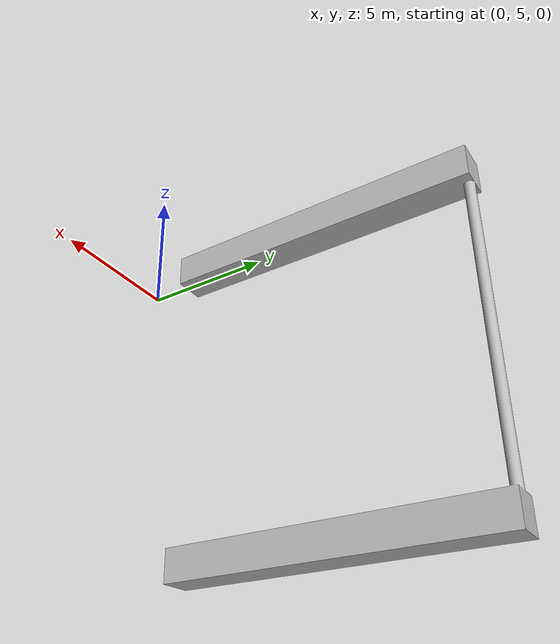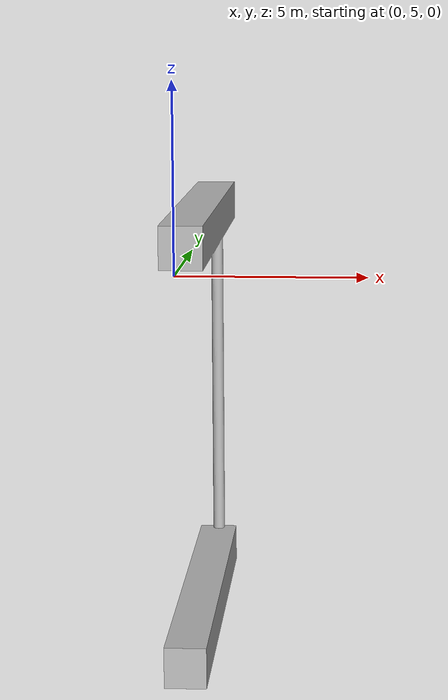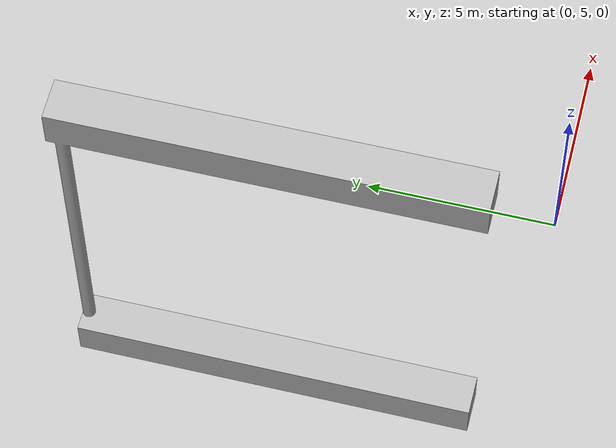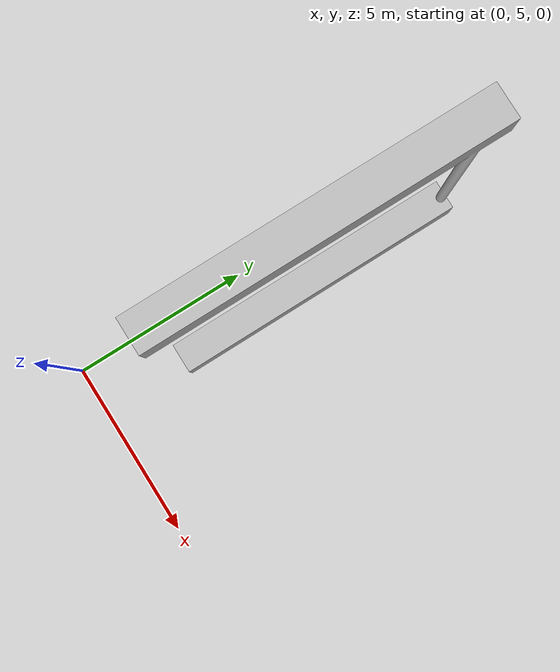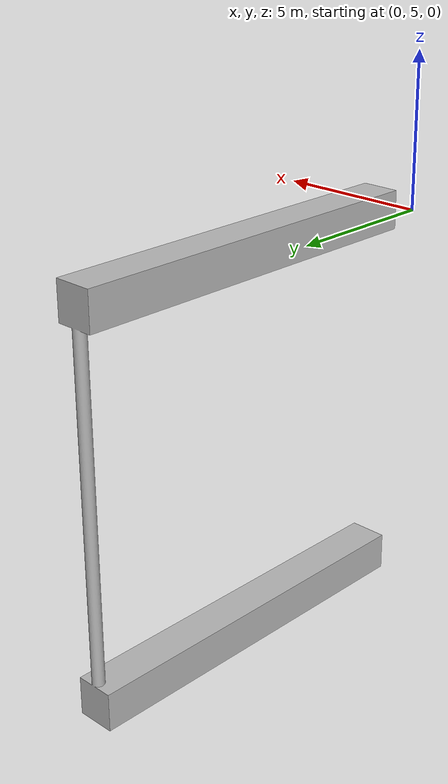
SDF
<?xml version="1.0" ?>
<sdf version="1.6">
    <model name="OFICIAL_CORDAS">
        <pose>0 0 0.5 0 0 0</pose>
        <static>true</static>
        <link name="link">
            <collision name="collision">
                <geometry>
                    <mesh>
                        <uri>model://OFICIAL_CORDAS/meshes/2TRAVE.obj</uri>
                        <scale>3 3 3</scale>
                    </mesh>
                </geometry>
            </collision>
            <visual name="visual">
                <geometry>
                    <mesh>
                        <uri>model://OFICIAL_CORDAS/meshes/2TRAVE.obj</uri>
                        <scale>3 3 3</scale>
                    </mesh>
                </geometry>
            </visual>
        </link>
    </model>
</sdf>
